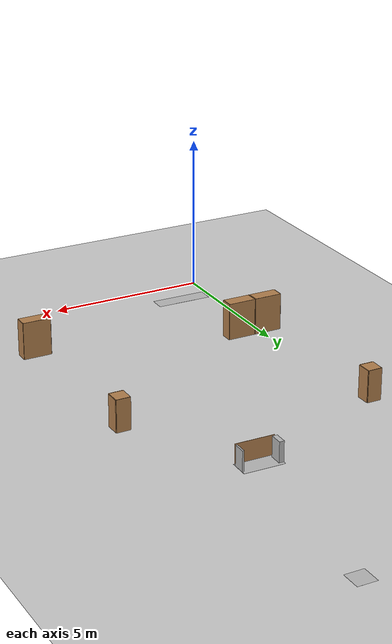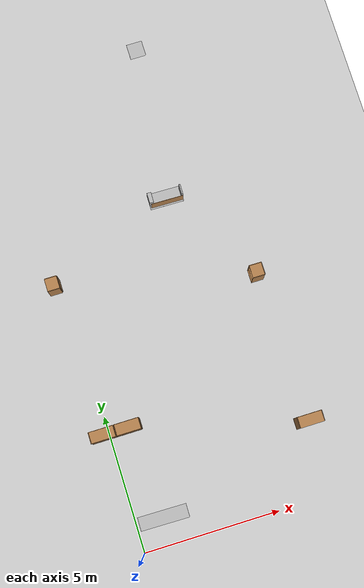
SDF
<sdf version="1.6">
 <world name="default">
  <light name="sun" type="directional">
   <pose>0 0 10 0 -0 0</pose>
   <diffuse>0.8 0.8 0.8 1</diffuse>
   <specular>0.2 0.2 0.2 1</specular>
   <attenuation>
    <range>1000</range>
    <constant>0.9</constant>
    <linear>0.01</linear>
    <quadratic>0.001</quadratic>
   </attenuation>
   <direction>-0.5 0.1 -0.9</direction>
  </light>
  <model name="ground_plane">
   <static>1</static>
   <link name="link">
    <collision name="collision">
     <geometry><plane><normal>0 0 1</normal><size>100 100</size></plane></geometry>
     <surface><friction><ode><mu>100</mu><mu2>50</mu2></ode></friction></surface>
    </collision>
    <visual name="visual">
     <cast_shadows>0</cast_shadows>
     <geometry><plane><normal>0 0 1</normal><size>100 100</size></plane></geometry>
     <material>
      <script><uri>file://media/materials/scripts/gazebo.material</uri><name>Gazebo/Grey</name></script>
     </material>
    </visual>
   </link>
  </model>
  <gravity>0 0 -9.8</gravity>
  <magnetic_field>6e-06 2.3e-05 -4.2e-05</magnetic_field>
  <atmosphere type="adiabatic"/>
  <physics name="default_physics" default="0" type="ode">
   <max_step_size>0.001</max_step_size>
   <real_time_factor>1</real_time_factor>
   <real_time_update_rate>1000</real_time_update_rate>
  </physics>
  <scene><ambient>0.4 0.4 0.4 1</ambient><background>0.7 0.7 0.7 1</background><shadows>1</shadows></scene>
  <audio><device>default</device></audio>
  <spherical_coordinates>
   <surface_model>EARTH_WGS84</surface_model>
   <latitude_deg>0</latitude_deg>
   <longitude_deg>0</longitude_deg>
   <elevation>0</elevation>
   <heading_deg>0</heading_deg>
  </spherical_coordinates>
  <model name="end_plane">
   <static>1</static>
   <link name="link">
    <collision name="collision">
     <geometry><plane><normal>0 0 1</normal><size>0.6 0.6</size></plane></geometry>
     <surface><friction><ode><mu>100</mu><mu2>50</mu2></ode></friction></surface>
    </collision>
    <visual name="visual">
     <cast_shadows>0</cast_shadows>
     <geometry><plane><normal>0 0 1</normal><size>0.6 0.6</size></plane></geometry>
     <material>
      <script>
       <uri>model://end_plane/materials/scripts</uri>
       <uri>model://end_plane/materials/textures/</uri>
       <name>EndPlane/Image</name>
      </script>
     </material>
    </visual>
   </link>
   <pose>5.1 18 0 0 -0 0</pose>
  </model>
  <model name="start_plane">
   <static>1</static>
   <link name="link">
    <collision name="collision">
     <geometry><plane><normal>0 0 1</normal><size>0.5 1.8</size></plane></geometry>
     <surface><friction><ode><mu>100</mu><mu2>50</mu2></ode></friction></surface>
    </collision>
    <visual name="visual">
     <cast_shadows>0</cast_shadows>
     <geometry><plane><normal>0 0 1</normal><size>0.5 1.8</size></plane></geometry>
     <material>
      <script>
       <uri>model://start_plane/materials/scripts</uri>
       <uri>model://start_plane/materials/textures/</uri>
       <name>StartPlane/Image</name>
      </script>
     </material>
    </visual>
   </link>
   <pose>1 1 0 0 0 -1.58541</pose>
  </model>
  <model name="cabinet">
   <static>1</static>
   <link name="cabinet_bottom_plate">
    <inertial>
     <pose>0 0 -1 0 -0 0</pose>
     <inertia><ixx>2.05</ixx><ixy>0</ixy><ixz>0</ixz><iyy>2.05</iyy><iyz>0</iyz><izz>2.05</izz></inertia>
     <mass>25</mass>
    </inertial>
    <collision name="cabinet_bottom_plate_geom">
     <pose>0 0 0.01 0 -0 0</pose>
     <geometry><box><size>0.45 0.45 0.02</size></box></geometry>
    </collision>
    <visual name="cabinet_bottom_plate_geom_visual">
     <pose>0 0 0.01 0 -0 0</pose>
     <geometry><box><size>0.45 0.45 0.02</size></box></geometry>
     <material>
      <script><uri>file://media/materials/scripts/gazebo.material</uri><name>Gazebo/Wood</name></script>
     </material>
    </visual>
    <collision name="cabinet_bottom_plate_geom_cabinet_back_plate">
     <pose>0.235 0 0.51 0 -0 0</pose>
     <geometry><box><size>0.02 0.45 1.02</size></box></geometry>
    </collision>
    <visual name="cabinet_bottom_plate_geom_cabinet_back_plate_visual">
     <pose>0.235 0 0.51 0 -0 0</pose>
     <geometry><box><size>0.02 0.45 1.02</size></box></geometry>
     <material>
      <script><uri>file://media/materials/scripts/gazebo.material</uri><name>Gazebo/Wood</name></script>
     </material>
    </visual>
    <collision name="cabinet_bottom_plate_geom_cabinet_left_plate">
     <pose>0 0.235 0.51 0 -0 0</pose>
     <geometry><box><size>0.45 0.02 1.02</size></box></geometry>
    </collision>
    <visual name="cabinet_bottom_plate_geom_cabinet_left_plate_visual">
     <pose>0 0.235 0.51 0 -0 0</pose>
     <geometry><box><size>0.45 0.02 1.02</size></box></geometry>
     <material>
      <script><uri>file://media/materials/scripts/gazebo.material</uri><name>Gazebo/Wood</name></script>
     </material>
    </visual>
    <collision name="cabinet_bottom_plate_geom_cabinet_middle_plate">
     <pose>0 0 0.51 0 -0 0</pose>
     <geometry><box><size>0.45 0.45 0.02</size></box></geometry>
    </collision>
    <visual name="cabinet_bottom_plate_geom_cabinet_middle_plate_visual">
     <pose>0 0 0.51 0 -0 0</pose>
     <geometry><box><size>0.45 0.45 0.02</size></box></geometry>
     <material>
      <script><uri>file://media/materials/scripts/gazebo.material</uri><name>Gazebo/Wood</name></script>
     </material>
    </visual>
    <collision name="cabinet_bottom_plate_geom_cabinet_right_plate">
     <pose>0 -0.235 0.51 0 -0 0</pose>
     <geometry><box><size>0.45 0.02 1.02</size></box></geometry>
    </collision>
    <visual name="cabinet_bottom_plate_geom_cabinet_right_plate_visual">
     <pose>0 -0.235 0.51 0 -0 0</pose>
     <geometry><box><size>0.45 0.02 1.02</size></box></geometry>
     <material>
      <script><uri>file://media/materials/scripts/gazebo.material</uri><name>Gazebo/Wood</name></script>
     </material>
    </visual>
    <collision name="cabinet_bottom_plate_geom_cabinet_top_plate">
     <pose>0 0 1.01 0 -0 0</pose>
     <geometry><box><size>0.45 0.45 0.02</size></box></geometry>
    </collision>
    <visual name="cabinet_bottom_plate_geom_cabinet_top_plate_visual">
     <pose>0 0 1.01 0 -0 0</pose>
     <geometry><box><size>0.45 0.45 0.02</size></box></geometry>
     <material>
      <script><uri>file://media/materials/scripts/gazebo.material</uri><name>Gazebo/Wood</name></script>
     </material>
    </visual>
   </link>
   <pose>6.78268 8.36929 0 0 -0 0</pose>
  </model>
  <model name="cabinet_0">
   <static>1</static>
   <link name="cabinet_bottom_plate">
    <inertial>
     <pose>0 0 -1 0 -0 0</pose>
     <inertia><ixx>2.05</ixx><ixy>0</ixy><ixz>0</ixz><iyy>2.05</iyy><iyz>0</iyz><izz>2.05</izz></inertia>
     <mass>25</mass>
    </inertial>
    <collision name="cabinet_bottom_plate_geom">
     <pose>0 0 0.01 0 -0 0</pose>
     <geometry><box><size>0.45 0.45 0.02</size></box></geometry>
    </collision>
    <visual name="cabinet_bottom_plate_geom_visual">
     <pose>0 0 0.01 0 -0 0</pose>
     <geometry><box><size>0.45 0.45 0.02</size></box></geometry>
     <material>
      <script><uri>file://media/materials/scripts/gazebo.material</uri><name>Gazebo/Wood</name></script>
     </material>
    </visual>
    <collision name="cabinet_bottom_plate_geom_cabinet_back_plate">
     <pose>0.235 0 0.51 0 -0 0</pose>
     <geometry><box><size>0.02 0.45 1.02</size></box></geometry>
    </collision>
    <visual name="cabinet_bottom_plate_geom_cabinet_back_plate_visual">
     <pose>0.235 0 0.51 0 -0 0</pose>
     <geometry><box><size>0.02 0.45 1.02</size></box></geometry>
     <material>
      <script><uri>file://media/materials/scripts/gazebo.material</uri><name>Gazebo/Wood</name></script>
     </material>
    </visual>
    <collision name="cabinet_bottom_plate_geom_cabinet_left_plate">
     <pose>0 0.235 0.51 0 -0 0</pose>
     <geometry><box><size>0.45 0.02 1.02</size></box></geometry>
    </collision>
    <visual name="cabinet_bottom_plate_geom_cabinet_left_plate_visual">
     <pose>0 0.235 0.51 0 -0 0</pose>
     <geometry><box><size>0.45 0.02 1.02</size></box></geometry>
     <material>
      <script><uri>file://media/materials/scripts/gazebo.material</uri><name>Gazebo/Wood</name></script>
     </material>
    </visual>
    <collision name="cabinet_bottom_plate_geom_cabinet_middle_plate">
     <pose>0 0 0.51 0 -0 0</pose>
     <geometry><box><size>0.45 0.45 0.02</size></box></geometry>
    </collision>
    <visual name="cabinet_bottom_plate_geom_cabinet_middle_plate_visual">
     <pose>0 0 0.51 0 -0 0</pose>
     <geometry><box><size>0.45 0.45 0.02</size></box></geometry>
     <material>
      <script><uri>file://media/materials/scripts/gazebo.material</uri><name>Gazebo/Wood</name></script>
     </material>
    </visual>
    <collision name="cabinet_bottom_plate_geom_cabinet_right_plate">
     <pose>0 -0.235 0.51 0 -0 0</pose>
     <geometry><box><size>0.45 0.02 1.02</size></box></geometry>
    </collision>
    <visual name="cabinet_bottom_plate_geom_cabinet_right_plate_visual">
     <pose>0 -0.235 0.51 0 -0 0</pose>
     <geometry><box><size>0.45 0.02 1.02</size></box></geometry>
     <material>
      <script><uri>file://media/materials/scripts/gazebo.material</uri><name>Gazebo/Wood</name></script>
     </material>
    </visual>
    <collision name="cabinet_bottom_plate_geom_cabinet_top_plate">
     <pose>0 0 1.01 0 -0 0</pose>
     <geometry><box><size>0.45 0.45 0.02</size></box></geometry>
    </collision>
    <visual name="cabinet_bottom_plate_geom_cabinet_top_plate_visual">
     <pose>0 0 1.01 0 -0 0</pose>
     <geometry><box><size>0.45 0.45 0.02</size></box></geometry>
     <material>
      <script><uri>file://media/materials/scripts/gazebo.material</uri><name>Gazebo/Wood</name></script>
     </material>
    </visual>
   </link>
   <pose>-0.397289 10.0675 0 0 -0 0</pose>
  </model>
  <model name="bookshelf">
   <static>1</static>
   <link name="link">
    <inertial><mass>1</mass></inertial>
    <collision name="back">
     <pose>0 0.005 0.6 0 -0 0</pose>
     <geometry><box><size>0.9 0.01 1.2</size></box></geometry>
    </collision>
    <visual name="visual1">
     <pose>0 0.005 0.6 0 -0 0</pose>
     <geometry><box><size>0.9 0.01 1.2</size></box></geometry>
     <material>
      <script><uri>file://media/materials/scripts/gazebo.material</uri><name>Gazebo/Wood</name></script>
     </material>
    </visual>
    <collision name="left_side">
     <pose>0.45 -0.195 0.6 0 -0 0</pose>
     <geometry><box><size>0.02 0.4 1.2</size></box></geometry>
    </collision>
    <visual name="visual2">
     <pose>0.45 -0.195 0.6 0 -0 0</pose>
     <geometry><box><size>0.02 0.4 1.2</size></box></geometry>
     <material>
      <script><uri>file://media/materials/scripts/gazebo.material</uri><name>Gazebo/Wood</name></script>
     </material>
    </visual>
    <collision name="right_side">
     <pose>-0.45 -0.195 0.6 0 -0 0</pose>
     <geometry><box><size>0.02 0.4 1.2</size></box></geometry>
    </collision>
    <visual name="visual3">
     <pose>-0.45 -0.195 0.6 0 -0 0</pose>
     <geometry><box><size>0.02 0.4 1.2</size></box></geometry>
     <material>
      <script><uri>file://media/materials/scripts/gazebo.material</uri><name>Gazebo/Wood</name></script>
     </material>
    </visual>
    <collision name="bottom">
     <pose>0 -0.195 0.03 0 -0 0</pose>
     <geometry><box><size>0.88 0.4 0.06</size></box></geometry>
    </collision>
    <visual name="visual4">
     <pose>0 -0.195 0.03 0 -0 0</pose>
     <geometry><box><size>0.88 0.4 0.06</size></box></geometry>
     <material>
      <script><uri>file://media/materials/scripts/gazebo.material</uri><name>Gazebo/Wood</name></script>
     </material>
    </visual>
    <collision name="top">
     <pose>0 -0.195 1.19 0 -0 0</pose>
     <geometry><box><size>0.88 0.4 0.02</size></box></geometry>
    </collision>
    <visual name="visual5">
     <pose>0 -0.195 1.19 0 -0 0</pose>
     <geometry><box><size>0.88 0.4 0.02</size></box></geometry>
     <material>
      <script><uri>file://media/materials/scripts/gazebo.material</uri><name>Gazebo/Wood</name></script>
     </material>
    </visual>
    <collision name="low_shelf">
     <pose>0 -0.195 0.43 0 -0 0</pose>
     <geometry><box><size>0.88 0.4 0.02</size></box></geometry>
    </collision>
    <visual name="visual6">
     <pose>0 -0.195 0.43 0 -0 0</pose>
     <geometry><box><size>0.88 0.4 0.02</size></box></geometry>
     <material>
      <script><uri>file://media/materials/scripts/gazebo.material</uri><name>Gazebo/Wood</name></script>
     </material>
    </visual>
    <collision name="high_shelf">
     <pose>0 -0.195 0.8 0 -0 0</pose>
     <geometry><box><size>0.88 0.4 0.02</size></box></geometry>
    </collision>
    <visual name="visual7">
     <pose>0 -0.195 0.8 0 -0 0</pose>
     <geometry><box><size>0.88 0.4 0.02</size></box></geometry>
     <material>
      <script><uri>file://media/materials/scripts/gazebo.material</uri><name>Gazebo/Wood</name></script>
     </material>
    </visual>
   </link>
   <pose>-0.188703 4.587 0 0 -0 0</pose>
  </model>
  <model name="bookshelf_0">
   <static>1</static>
   <link name="bookshelf_0::link">
    <inertial><mass>1</mass></inertial>
    <collision name="back">
     <pose>0 0.005 0.6 0 -0 0</pose>
     <geometry><box><size>0.9 0.01 1.2</size></box></geometry>
    </collision>
    <visual name="visual1">
     <pose>0 0.005 0.6 0 -0 0</pose>
     <geometry><box><size>0.9 0.01 1.2</size></box></geometry>
     <material>
      <script><uri>file://media/materials/scripts/gazebo.material</uri><name>Gazebo/Wood</name></script>
     </material>
    </visual>
    <collision name="left_side">
     <pose>0.45 -0.195 0.6 0 -0 0</pose>
     <geometry><box><size>0.02 0.4 1.2</size></box></geometry>
    </collision>
    <visual name="visual2">
     <pose>0.45 -0.195 0.6 0 -0 0</pose>
     <geometry><box><size>0.02 0.4 1.2</size></box></geometry>
     <material>
      <script><uri>file://media/materials/scripts/gazebo.material</uri><name>Gazebo/Wood</name></script>
     </material>
    </visual>
    <collision name="right_side">
     <pose>-0.45 -0.195 0.6 0 -0 0</pose>
     <geometry><box><size>0.02 0.4 1.2</size></box></geometry>
    </collision>
    <visual name="visual3">
     <pose>-0.45 -0.195 0.6 0 -0 0</pose>
     <geometry><box><size>0.02 0.4 1.2</size></box></geometry>
     <material>
      <script><uri>file://media/materials/scripts/gazebo.material</uri><name>Gazebo/Wood</name></script>
     </material>
    </visual>
    <collision name="bottom">
     <pose>0 -0.195 0.03 0 -0 0</pose>
     <geometry><box><size>0.88 0.4 0.06</size></box></geometry>
    </collision>
    <visual name="visual4">
     <pose>0 -0.195 0.03 0 -0 0</pose>
     <geometry><box><size>0.88 0.4 0.06</size></box></geometry>
     <material>
      <script><uri>file://media/materials/scripts/gazebo.material</uri><name>Gazebo/Wood</name></script>
     </material>
    </visual>
    <collision name="top">
     <pose>0 -0.195 1.19 0 -0 0</pose>
     <geometry><box><size>0.88 0.4 0.02</size></box></geometry>
    </collision>
    <visual name="visual5">
     <pose>0 -0.195 1.19 0 -0 0</pose>
     <geometry><box><size>0.88 0.4 0.02</size></box></geometry>
     <material>
      <script><uri>file://media/materials/scripts/gazebo.material</uri><name>Gazebo/Wood</name></script>
     </material>
    </visual>
    <collision name="low_shelf">
     <pose>0 -0.195 0.43 0 -0 0</pose>
     <geometry><box><size>0.88 0.4 0.02</size></box></geometry>
    </collision>
    <visual name="visual6">
     <pose>0 -0.195 0.43 0 -0 0</pose>
     <geometry><box><size>0.88 0.4 0.02</size></box></geometry>
     <material>
      <script><uri>file://media/materials/scripts/gazebo.material</uri><name>Gazebo/Wood</name></script>
     </material>
    </visual>
    <collision name="high_shelf">
     <pose>0 -0.195 0.8 0 -0 0</pose>
     <geometry><box><size>0.88 0.4 0.02</size></box></geometry>
    </collision>
    <visual name="visual7">
     <pose>0 -0.195 0.8 0 -0 0</pose>
     <geometry><box><size>0.88 0.4 0.02</size></box></geometry>
     <material>
      <script><uri>file://media/materials/scripts/gazebo.material</uri><name>Gazebo/Wood</name></script>
     </material>
    </visual>
   </link>
   <pose>0.73818 4.58756 0 0 -0 0</pose>
  </model>
  <model name="bookshelf_1">
   <static>1</static>
   <link name="link">
    <inertial><mass>1</mass></inertial>
    <collision name="back">
     <pose>0 0.005 0.6 0 -0 0</pose>
     <geometry><box><size>0.9 0.01 1.2</size></box></geometry>
    </collision>
    <visual name="visual1">
     <pose>0 0.005 0.6 0 -0 0</pose>
     <geometry><box><size>0.9 0.01 1.2</size></box></geometry>
     <material>
      <script><uri>file://media/materials/scripts/gazebo.material</uri><name>Gazebo/Wood</name></script>
     </material>
    </visual>
    <collision name="left_side">
     <pose>0.45 -0.195 0.6 0 -0 0</pose>
     <geometry><box><size>0.02 0.4 1.2</size></box></geometry>
    </collision>
    <visual name="visual2">
     <pose>0.45 -0.195 0.6 0 -0 0</pose>
     <geometry><box><size>0.02 0.4 1.2</size></box></geometry>
     <material>
      <script><uri>file://media/materials/scripts/gazebo.material</uri><name>Gazebo/Wood</name></script>
     </material>
    </visual>
    <collision name="right_side">
     <pose>-0.45 -0.195 0.6 0 -0 0</pose>
     <geometry><box><size>0.02 0.4 1.2</size></box></geometry>
    </collision>
    <visual name="visual3">
     <pose>-0.45 -0.195 0.6 0 -0 0</pose>
     <geometry><box><size>0.02 0.4 1.2</size></box></geometry>
     <material>
      <script><uri>file://media/materials/scripts/gazebo.material</uri><name>Gazebo/Wood</name></script>
     </material>
    </visual>
    <collision name="bottom">
     <pose>0 -0.195 0.03 0 -0 0</pose>
     <geometry><box><size>0.88 0.4 0.06</size></box></geometry>
    </collision>
    <visual name="visual4">
     <pose>0 -0.195 0.03 0 -0 0</pose>
     <geometry><box><size>0.88 0.4 0.06</size></box></geometry>
     <material>
      <script><uri>file://media/materials/scripts/gazebo.material</uri><name>Gazebo/Wood</name></script>
     </material>
    </visual>
    <collision name="top">
     <pose>0 -0.195 1.19 0 -0 0</pose>
     <geometry><box><size>0.88 0.4 0.02</size></box></geometry>
    </collision>
    <visual name="visual5">
     <pose>0 -0.195 1.19 0 -0 0</pose>
     <geometry><box><size>0.88 0.4 0.02</size></box></geometry>
     <material>
      <script><uri>file://media/materials/scripts/gazebo.material</uri><name>Gazebo/Wood</name></script>
     </material>
    </visual>
    <collision name="low_shelf">
     <pose>0 -0.195 0.43 0 -0 0</pose>
     <geometry><box><size>0.88 0.4 0.02</size></box></geometry>
    </collision>
    <visual name="visual6">
     <pose>0 -0.195 0.43 0 -0 0</pose>
     <geometry><box><size>0.88 0.4 0.02</size></box></geometry>
     <material>
      <script><uri>file://media/materials/scripts/gazebo.material</uri><name>Gazebo/Wood</name></script>
     </material>
    </visual>
    <collision name="high_shelf">
     <pose>0 -0.195 0.8 0 -0 0</pose>
     <geometry><box><size>0.88 0.4 0.02</size></box></geometry>
    </collision>
    <visual name="visual7">
     <pose>0 -0.195 0.8 0 -0 0</pose>
     <geometry><box><size>0.88 0.4 0.02</size></box></geometry>
     <material>
      <script><uri>file://media/materials/scripts/gazebo.material</uri><name>Gazebo/Wood</name></script>
     </material>
    </visual>
   </link>
   <pose>6.94518 2.93784 0 0 -0 0</pose>
  </model>
  <model name="frc2016_sallyport">
   <link name="base">
    <inertial>
     <mass>50</mass>
     <pose>0 0 0.35406 0 -0 0</pose>
     <inertia><ixx>0.727808</ixx><ixy>0</ixy><ixz>0</ixz><iyy>1.77488</iyy><iyz>0</iyz><izz>1.64109</izz></inertia>
    </inertial>
    <visual name="platform">
     <pose>0 0 0.06974 0 -0 0</pose>
     <geometry><box><size>1.27 0.5969 0.003175</size></box></geometry>
    </visual>
    <collision name="platform">
     <pose>0 0 0.06974 0 -0 0</pose>
     <geometry><box><size>1.27 0.5969 0.003175</size></box></geometry>
    </collision>
    <visual name="left_column">
     <pose>-0.5588 0.00318 0.38876 0 -0 0</pose>
     <geometry><box><size>0.1524 0.38735 0.635</size></box></geometry>
    </visual>
    <collision name="left_column">
     <pose>-0.5588 0.00318 0.38876 0 -0 0</pose>
     <geometry><box><size>0.1524 0.38735 0.635</size></box></geometry>
    </collision>
    <visual name="right_column">
     <pose>0.6096 0.00635 0.38876 0 -0 0</pose>
     <geometry><box><size>0.0508 0.381 0.635</size></box></geometry>
    </visual>
    <collision name="right_column">
     <pose>0.6096 0.00635 0.38876 0 -0 0</pose>
     <geometry><box><size>0.0508 0.381 0.635</size></box></geometry>
    </collision>
    <visual name="castor1">
     <pose>-0.45886 0.15389 0.03487 0 -0 0</pose>
     <geometry><sphere><radius>0.03487</radius></sphere></geometry>
    </visual>
    <collision name="castor1">
     <pose>-0.45886 0.15389 0.03487 0 -0 0</pose>
     <geometry><sphere><radius>0.03487</radius></sphere></geometry>
    </collision>
    <visual name="castor2">
     <pose>-0.28117 -0.22559 0.03487 0 -0 0</pose>
     <geometry><sphere><radius>0.03487</radius></sphere></geometry>
    </visual>
    <collision name="castor2">
     <pose>-0.28117 -0.22559 0.03487 0 -0 0</pose>
     <geometry><sphere><radius>0.03487</radius></sphere></geometry>
    </collision>
    <visual name="castor3">
     <pose>0.27933 -0.2272 0.03487 0 -0 0</pose>
     <geometry><sphere><radius>0.03487</radius></sphere></geometry>
    </visual>
    <collision name="castor3">
     <pose>0.27933 -0.2272 0.03487 0 -0 0</pose>
     <geometry><sphere><radius>0.03487</radius></sphere></geometry>
    </collision>
    <visual name="castor4">
     <pose>0.4571 0.15424 0.03487 0 -0 0</pose>
     <geometry><sphere><radius>0.03487</radius></sphere></geometry>
    </visual>
    <collision name="castor4">
     <pose>0.4571 0.15424 0.03487 0 -0 0</pose>
     <geometry><sphere><radius>0.03487</radius></sphere></geometry>
    </collision>
   </link>
   <link name="door">
    <pose>0.02255 -0.24321 0.40332 0 -0 0</pose>
    <inertial>
     <pose>0 0 0 -1.5707 0 0</pose>
     <mass>2</mass>
     <inertia>
      <ixx>0.0619421</ixx>
      <ixy>0</ixy>
      <ixz>0</ixz>
      <iyy>0.246462</iyy>
      <iyz>0</iyz>
      <izz>0.30839</izz>
     </inertia>
    </inertial>
    <visual name="visual">
     <geometry><box><size>1.21603 0.00635 0.6096</size></box></geometry>
     <material><script><name>Gazebo/WoodFloor</name><uri>__default__</uri></script></material>
    </visual>
    <collision name="collision"><geometry><box><size>1.21603 0.00635 0.6096</size></box></geometry></collision>
   </link>
   <joint name="door_joint" type="revolute">
    <pose>-0.608015 0 0 0 -0 0</pose>
    <parent>base</parent>
    <child>door</child>
    <axis>
     <xyz>0 0 1</xyz>
     <limit><lower>-3.1415</lower><upper>0</upper></limit>
     <use_parent_model_frame>0</use_parent_model_frame>
     <dynamics><spring_reference>0</spring_reference><spring_stiffness>0</spring_stiffness></dynamics>
    </axis>
   </joint>
   <pose>4.46557 12.12 0 -3e-06 -0 -0.017804</pose>
  </model>
 </world>
</sdf>
